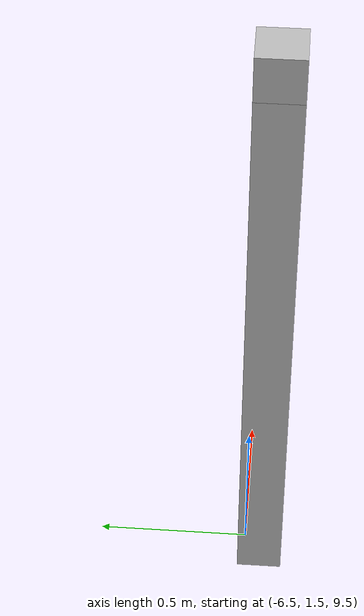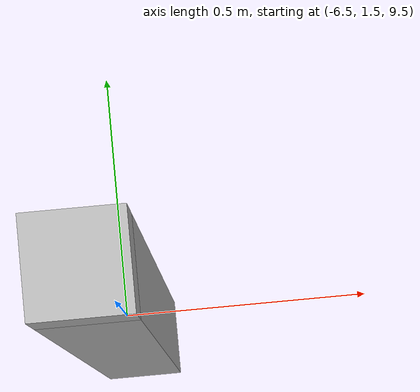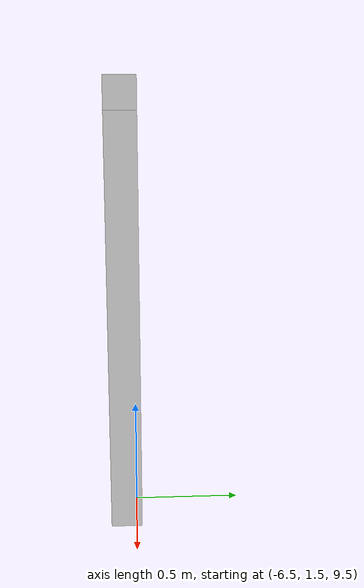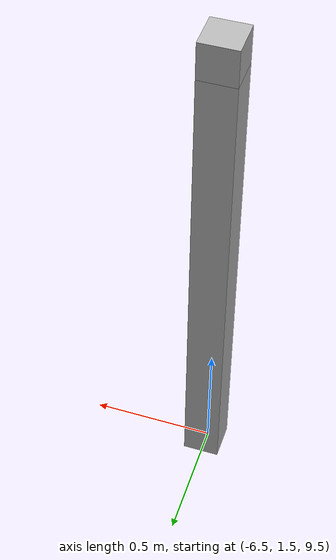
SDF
<sdf version="1.7">
 <world name="default">
  <model name="orthogonal_747_2.000.15_TS">
   <static>1</static>
   <link name="u_link_6_3_0">
    <inertial>
     <mass>1</mass>
     <inertia>
      <ixx>0.166667</ixx>
      <ixy>0</ixy>
      <ixz>0</ixz>
      <iyy>0.166667</iyy>
      <iyz>0</iyz>
      <izz>0.166667</izz>
     </inertia>
    </inertial>
    <pose>0 6.45 13.975 0 -0 0</pose>
    <visual name="visual_0">
     <laser_retro>5930</laser_retro>
     <geometry><box><size>0.15 1e-06 0.15</size></box></geometry>
     <material>
      <script><name>Gazebo/Grey</name><uri>file://media/materials/scripts/gazebo.material</uri></script>
      <shader type="pixel"><normal_map>__default__</normal_map></shader>
      <ambient>0.678 0.498 0.659 1</ambient>
      <diffuse>0.7 0.7 0.7 1</diffuse>
      <specular>0.01 0.01 0.01 1</specular>
      <emissive>0 0 0 1</emissive>
     </material>
     <pose>0 -0.075 0 0 -0 0</pose>
     <transparency>1</transparency>
    </visual>
    <visual name="visual_1">
     <laser_retro>5931</laser_retro>
     <geometry><box><size>0.15 1e-06 0.15</size></box></geometry>
     <material>
      <script><name>Gazebo/Grey</name><uri>file://media/materials/scripts/gazebo.material</uri></script>
      <shader type="pixel"><normal_map>__default__</normal_map></shader>
      <ambient>0.447 0.624 0.812 1</ambient>
      <diffuse>0.7 0.7 0.7 1</diffuse>
      <specular>0.01 0.01 0.01 1</specular>
      <emissive>0 0 0 1</emissive>
     </material>
     <pose>0 0.075 0 0 -0 0</pose>
     <transparency>1</transparency>
    </visual>
    <visual name="visual_2">
     <laser_retro>5932</laser_retro>
     <geometry><box><size>0.15 0.15 1e-06</size></box></geometry>
     <material>
      <script><name>Gazebo/Grey</name><uri>file://media/materials/scripts/gazebo.material</uri></script>
      <shader type="pixel"><normal_map>__default__</normal_map></shader>
      <ambient>0.988 0.686 0.243 1</ambient>
      <diffuse>0.7 0.7 0.7 1</diffuse>
      <specular>0.01 0.01 0.01 1</specular>
      <emissive>0 0 0 1</emissive>
     </material>
     <pose>0 0 -0.075 0 -0 0</pose>
     <transparency>1</transparency>
    </visual>
    <visual name="visual_3">
     <laser_retro>5933</laser_retro>
     <geometry><box><size>1e-06 0.15 0.15</size></box></geometry>
     <material>
      <script><name>Gazebo/Grey</name><uri>file://media/materials/scripts/gazebo.material</uri></script>
      <shader type="pixel"><normal_map>__default__</normal_map></shader>
      <ambient>0.988 0.914 0.31 1</ambient>
      <diffuse>0.7 0.7 0.7 1</diffuse>
      <specular>0.01 0.01 0.01 1</specular>
      <emissive>0 0 0 1</emissive>
     </material>
     <pose>0.075 0 0 0 -0 0</pose>
     <transparency>1</transparency>
    </visual>
    <visual name="visual_4">
     <laser_retro>5934</laser_retro>
     <geometry><box><size>0.15 0.15 1e-06</size></box></geometry>
     <material>
      <script><name>Gazebo/Grey</name><uri>file://media/materials/scripts/gazebo.material</uri></script>
      <shader type="pixel"><normal_map>__default__</normal_map></shader>
      <ambient>0.937 0.161 0.161 1</ambient>
      <diffuse>0.7 0.7 0.7 1</diffuse>
      <specular>0.01 0.01 0.01 1</specular>
      <emissive>0 0 0 1</emissive>
     </material>
     <pose>0 0 0.075 0 -0 0</pose>
     <transparency>1</transparency>
    </visual>
    <visual name="visual_5">
     <laser_retro>5935</laser_retro>
     <geometry><box><size>1e-06 0.15 0.15</size></box></geometry>
     <material>
      <script><name>Gazebo/Grey</name><uri>file://media/materials/scripts/gazebo.material</uri></script>
      <shader type="pixel"><normal_map>__default__</normal_map></shader>
      <ambient>0.541 0.886 0.204 1</ambient>
      <diffuse>0.7 0.7 0.7 1</diffuse>
      <specular>0.01 0.01 0.01 1</specular>
      <emissive>0 0 0 1</emissive>
     </material>
     <pose>-0.075 0 0 0 -0 0</pose>
     <transparency>1</transparency>
    </visual>
    <visual name="visual_texture">
     <geometry><box><size>0.149985 0.149985 0.149985</size></box></geometry>
     <material>
      <script>
       <uri>model://BASE_MODELS/simple_block_v2_textured/materials/scripts</uri>
       <uri>model://BASE_MODELS/simple_block_v2_textured/materials/textures</uri>
       <name>metal</name>
      </script>
     </material>
     <laser_retro>5936</laser_retro>
    </visual>
    <collision name="collision">
     <geometry><box><size>0.15 0.15 0.15</size></box></geometry>
     <surface>
      <friction>
       <ode><mu>1</mu><mu2>1</mu2><fdir1>0 0 0</fdir1><slip1>0</slip1><slip2>0</slip2></ode>
       <torsional>
        <coefficient>1</coefficient>
        <patch_radius>0</patch_radius>
        <surface_radius>0</surface_radius>
        <use_patch_radius>1</use_patch_radius>
        <ode><slip>0</slip></ode>
       </torsional>
      </friction>
      <bounce><restitution_coefficient>0</restitution_coefficient><threshold>1e+06</threshold></bounce>
      <contact>
       <collide_without_contact>0</collide_without_contact>
       <collide_without_contact_bitmask>1</collide_without_contact_bitmask>
       <collide_bitmask>1</collide_bitmask>
       <ode>
        <soft_cfm>0</soft_cfm>
        <soft_erp>0.2</soft_erp>
        <kp>1e+13</kp>
        <kd>1</kd>
        <max_vel>0.01</max_vel>
        <min_depth>0</min_depth>
       </ode>
       <bullet>
        <split_impulse>1</split_impulse>
        <split_impulse_penetration_threshold>-0.01</split_impulse_penetration_threshold>
        <soft_cfm>0</soft_cfm>
        <soft_erp>0.2</soft_erp>
        <kp>1e+13</kp>
        <kd>1</kd>
       </bullet>
      </contact>
     </surface>
    </collision>
   </link>
   <link name="z_link_6_3_0">
    <inertial>
     <mass>1</mass>
     <inertia>
      <ixx>0.166667</ixx>
      <ixy>0</ixy>
      <ixz>0</ixz>
      <iyy>0.166667</iyy>
      <iyz>0</iyz>
      <izz>0.166667</izz>
     </inertia>
    </inertial>
    <pose>0 6.45 12.9 0 -0 0</pose>
    <visual name="visual_0">
     <laser_retro>5937</laser_retro>
     <geometry><box><size>0.15 1e-06 2</size></box></geometry>
     <material>
      <script><name>Gazebo/Grey</name><uri>file://media/materials/scripts/gazebo.material</uri></script>
      <shader type="pixel"><normal_map>__default__</normal_map></shader>
      <ambient>0.678 0.498 0.659 1</ambient>
      <diffuse>0.7 0.7 0.7 1</diffuse>
      <specular>0.01 0.01 0.01 1</specular>
      <emissive>0 0 0 1</emissive>
     </material>
     <pose>0 -0.075 0 0 -0 0</pose>
     <transparency>1</transparency>
    </visual>
    <visual name="visual_1">
     <laser_retro>5938</laser_retro>
     <geometry><box><size>0.15 1e-06 2</size></box></geometry>
     <material>
      <script><name>Gazebo/Grey</name><uri>file://media/materials/scripts/gazebo.material</uri></script>
      <shader type="pixel"><normal_map>__default__</normal_map></shader>
      <ambient>0.447 0.624 0.812 1</ambient>
      <diffuse>0.7 0.7 0.7 1</diffuse>
      <specular>0.01 0.01 0.01 1</specular>
      <emissive>0 0 0 1</emissive>
     </material>
     <pose>0 0.075 0 0 -0 0</pose>
     <transparency>1</transparency>
    </visual>
    <visual name="visual_2">
     <laser_retro>5939</laser_retro>
     <geometry><box><size>0.15 0.15 1e-06</size></box></geometry>
     <material>
      <script><name>Gazebo/Grey</name><uri>file://media/materials/scripts/gazebo.material</uri></script>
      <shader type="pixel"><normal_map>__default__</normal_map></shader>
      <ambient>0.988 0.686 0.243 1</ambient>
      <diffuse>0.7 0.7 0.7 1</diffuse>
      <specular>0.01 0.01 0.01 1</specular>
      <emissive>0 0 0 1</emissive>
     </material>
     <pose>0 0 -1 0 -0 0</pose>
     <transparency>1</transparency>
    </visual>
    <visual name="visual_3">
     <laser_retro>5940</laser_retro>
     <geometry><box><size>1e-06 0.15 2</size></box></geometry>
     <material>
      <script><name>Gazebo/Grey</name><uri>file://media/materials/scripts/gazebo.material</uri></script>
      <shader type="pixel"><normal_map>__default__</normal_map></shader>
      <ambient>0.988 0.914 0.31 1</ambient>
      <diffuse>0.7 0.7 0.7 1</diffuse>
      <specular>0.01 0.01 0.01 1</specular>
      <emissive>0 0 0 1</emissive>
     </material>
     <pose>0.075 0 0 0 -0 0</pose>
     <transparency>1</transparency>
    </visual>
    <visual name="visual_4">
     <laser_retro>5941</laser_retro>
     <geometry><box><size>0.15 0.15 1e-06</size></box></geometry>
     <material>
      <script><name>Gazebo/Grey</name><uri>file://media/materials/scripts/gazebo.material</uri></script>
      <shader type="pixel"><normal_map>__default__</normal_map></shader>
      <ambient>0.937 0.161 0.161 1</ambient>
      <diffuse>0.7 0.7 0.7 1</diffuse>
      <specular>0.01 0.01 0.01 1</specular>
      <emissive>0 0 0 1</emissive>
     </material>
     <pose>0 0 1 0 -0 0</pose>
     <transparency>1</transparency>
    </visual>
    <visual name="visual_5">
     <laser_retro>5942</laser_retro>
     <geometry><box><size>1e-06 0.15 2</size></box></geometry>
     <material>
      <script><name>Gazebo/Grey</name><uri>file://media/materials/scripts/gazebo.material</uri></script>
      <shader type="pixel"><normal_map>__default__</normal_map></shader>
      <ambient>0.541 0.886 0.204 1</ambient>
      <diffuse>0.7 0.7 0.7 1</diffuse>
      <specular>0.01 0.01 0.01 1</specular>
      <emissive>0 0 0 1</emissive>
     </material>
     <pose>-0.075 0 0 0 -0 0</pose>
     <transparency>1</transparency>
    </visual>
    <visual name="visual_texture">
     <geometry><box><size>0.149985 0.149985 1.9998</size></box></geometry>
     <material>
      <script>
       <uri>model://BASE_MODELS/simple_block_v2_textured/materials/scripts</uri>
       <uri>model://BASE_MODELS/simple_block_v2_textured/materials/textures</uri>
       <name>metal</name>
      </script>
     </material>
     <laser_retro>5943</laser_retro>
    </visual>
    <collision name="collision">
     <geometry><box><size>0.15 0.15 2</size></box></geometry>
     <surface>
      <friction>
       <ode><mu>1</mu><mu2>1</mu2><fdir1>0 0 0</fdir1><slip1>0</slip1><slip2>0</slip2></ode>
       <torsional>
        <coefficient>1</coefficient>
        <patch_radius>0</patch_radius>
        <surface_radius>0</surface_radius>
        <use_patch_radius>1</use_patch_radius>
        <ode><slip>0</slip></ode>
       </torsional>
      </friction>
      <bounce><restitution_coefficient>0</restitution_coefficient><threshold>1e+06</threshold></bounce>
      <contact>
       <collide_without_contact>0</collide_without_contact>
       <collide_without_contact_bitmask>1</collide_without_contact_bitmask>
       <collide_bitmask>1</collide_bitmask>
       <ode>
        <soft_cfm>0</soft_cfm>
        <soft_erp>0.2</soft_erp>
        <kp>1e+13</kp>
        <kd>1</kd>
        <max_vel>0.01</max_vel>
        <min_depth>0</min_depth>
       </ode>
       <bullet>
        <split_impulse>1</split_impulse>
        <split_impulse_penetration_threshold>-0.01</split_impulse_penetration_threshold>
        <soft_cfm>0</soft_cfm>
        <soft_erp>0.2</soft_erp>
        <kp>1e+13</kp>
        <kd>1</kd>
       </bullet>
      </contact>
     </surface>
    </collision>
   </link>
   <pose>-6.47624 -5 -2.5 0 -0 0</pose>
  </model>
 </world>
</sdf>
